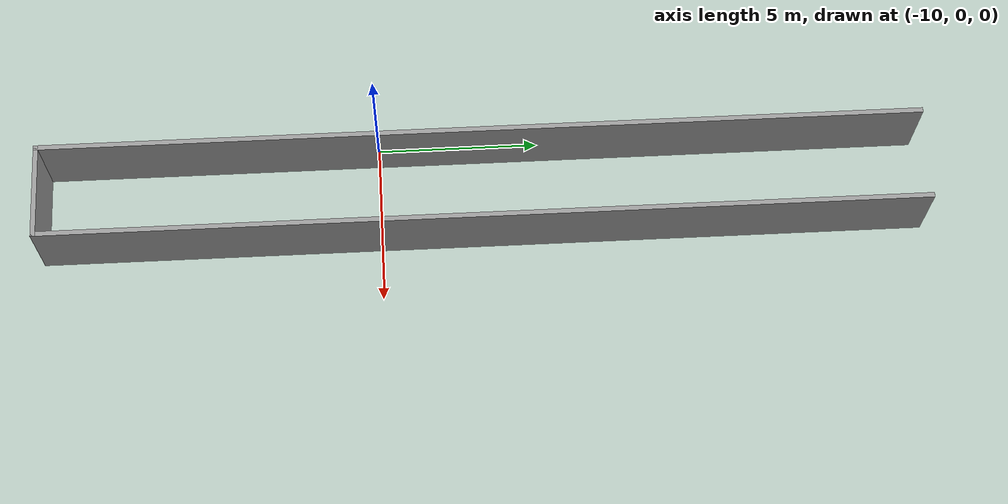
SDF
<?xml version='1.0'?>
<sdf version='1.6'>
  <model name='model_v2'>
    <pose frame=''>-4.80249 3.18491 0 0 -0 0</pose>
    <link name='Wall_6'>
      <collision name='Wall_6_Collision'>
        <geometry>
          <box>
            <size>27.5 0.15 2.5</size>
          </box>
        </geometry>
        <pose frame=''>0 0 1.25 0 -0 0</pose>
      </collision>
      <visual name='Wall_6_Visual'>
        <pose frame=''>0 0 1.25 0 -0 0</pose>
        <geometry>
          <box>
            <size>27.5 0.15 2.5</size>
          </box>
        </geometry>
        <material>
          <script>
            <uri>file://media/materials/scripts/gazebo.material</uri>
            <name>Gazebo/Grey</name>
          </script>
          <ambient>1 1 1 1</ambient>
        </material>
        <meta>
          <layer>0</layer>
        </meta>
      </visual>
      <pose frame=''>-4.72749 0 0 0 -0 -1.5708</pose>
    </link>
    <link name='Wall_7'>
      <collision name='Wall_7_Collision'>
        <geometry>
          <box>
            <size>3 0.15 2.5</size>
          </box>
        </geometry>
        <pose frame=''>0 0 1.25 0 -0 0</pose>
      </collision>
      <visual name='Wall_7_Visual'>
        <pose frame=''>0 0 1.25 0 -0 0</pose>
        <geometry>
          <box>
            <size>3 0.15 2.5</size>
          </box>
        </geometry>
        <material>
          <script>
            <uri>file://media/materials/scripts/gazebo.material</uri>
            <name>Gazebo/Grey</name>
          </script>
          <ambient>1 1 1 1</ambient>
        </material>
        <meta>
          <layer>0</layer>
        </meta>
      </visual>
      <pose frame=''>-3.30249 -13.675 0 0 -0 0</pose>
    </link>
    <link name='Wall_8'>
      <collision name='Wall_8_Collision'>
        <geometry>
          <box>
            <size>27.5 0.15 2.5</size>
          </box>
        </geometry>
        <pose frame=''>0 0 1.25 0 -0 0</pose>
      </collision>
      <visual name='Wall_8_Visual'>
        <pose frame=''>0 0 1.25 0 -0 0</pose>
        <geometry>
          <box>
            <size>27.5 0.15 2.5</size>
          </box>
        </geometry>
        <material>
          <script>
            <uri>file://media/materials/scripts/gazebo.material</uri>
            <name>Gazebo/Grey</name>
          </script>
          <ambient>1 1 1 1</ambient>
        </material>
        <meta>
          <layer>0</layer>
        </meta>
      </visual>
      <pose frame=''>-1.87749 0 0 0 -0 1.5708</pose>
    </link>
    <static>1</static>
  </model>
</sdf>
